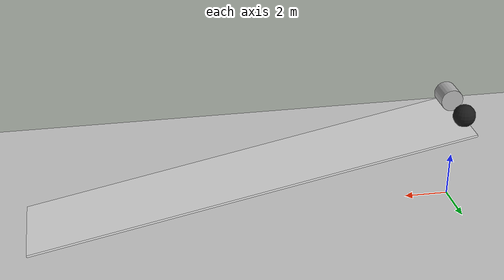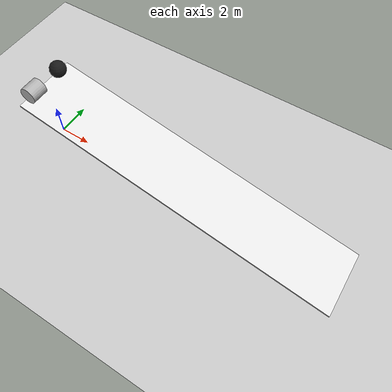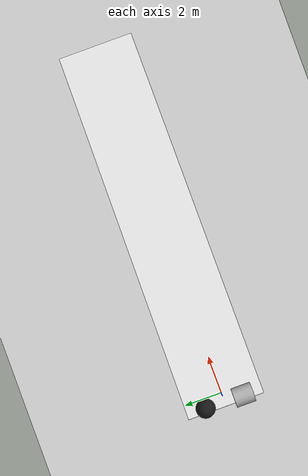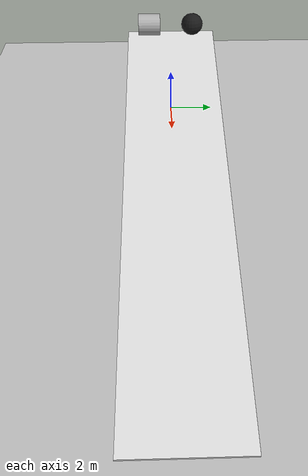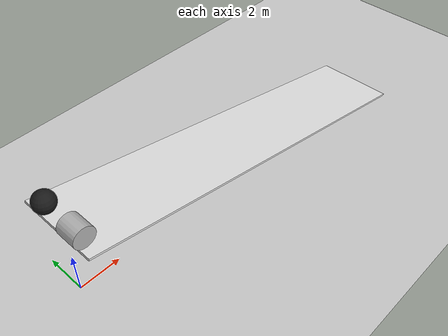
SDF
<?xml version="1.0" ?>
<sdf version='1.9'>
  <world name='falling_world'>
    <physics name='1ms' type='ignored'>
      <max_step_size>0.001</max_step_size>
      <real_time_factor>1</real_time_factor>
      <real_time_update_rate>1000</real_time_update_rate>
    </physics>
    <plugin name='gz::sim::systems::Physics' filename='ignition-gazebo-physics-system'/>
    <plugin name='gz::sim::systems::UserCommands' filename='ignition-gazebo-user-commands-system'/>
    <plugin name='gz::sim::systems::SceneBroadcaster' filename='ignition-gazebo-scene-broadcaster-system'/>
    <plugin name='gz::sim::systems::Contact' filename='ignition-gazebo-contact-system'/>
    <gravity>0 0 -9.8</gravity>
    <magnetic_field>6e-06 2.3e-05 -4.2e-05</magnetic_field>
    <atmosphere type='adiabatic'/>
    <scene>
      <ambient>0.4 0.4 0.4 1</ambient>
      <background>0.7 0.7 0.7 1</background>
      <shadows>true</shadows>
    </scene>
    <model name='ground_plane'>
      <static>true</static>
      <link name='link'>
        <collision name='collision'>
          <geometry>
            <plane>
              <normal>0 0 1</normal>
              <size>100 100</size>
            </plane>
          </geometry>
          <surface>
            <friction>
              <ode/>
            </friction>
            <bounce/>
            <contact/>
          </surface>
        </collision>
        <visual name='visual'>
          <geometry>
            <plane>
              <normal>0 0 1</normal>
              <size>100 100</size>
            </plane>
          </geometry>
          <material>
            <ambient>0.8 0.8 0.8 1</ambient>
            <diffuse>0.8 0.8 0.8 1</diffuse>
            <specular>0.8 0.8 0.8 1</specular>
          </material>
        </visual>
        <pose>0 0 0 0 -0 0</pose>
        <inertial>
          <pose>0 0 0 0 -0 0</pose>
          <mass>1</mass>
          <inertia>
            <ixx>1</ixx>
            <ixy>0</ixy>
            <ixz>0</ixz>
            <iyy>1</iyy>
            <iyz>0</iyz>
            <izz>1</izz>
          </inertia>
        </inertial>
        <enable_wind>false</enable_wind>
      </link>
      <pose>0 0 0 0 -0 0</pose>
      <self_collide>false</self_collide>
    </model>
    <model name='sphere'>
      <pose>0 1 4.5 0 0 0</pose>
      <link name='sphere_link'>
        <inertial>
          <inertia>
            <ixx>0.1</ixx>
            <ixy>0</ixy>
            <ixz>0</ixz>
            <iyy>0.1</iyy>
            <iyz>0</iyz>
            <izz>0.1</izz>
          </inertia>
          <mass>1</mass>
          <pose>0 0 0 0 -0 0</pose>
        </inertial>
        <collision name='sphere_collision'>
          <geometry>
            <sphere>
              <radius>0.5</radius>
            </sphere>
          </geometry>
          <surface>
            <friction>
              <ode/>
            </friction>
            <bounce/>
            <contact/>
          </surface>
        </collision>
        <visual name='sphere_visual'>
          <geometry>
            <sphere>
              <radius>0.5</radius>
            </sphere>
          </geometry>
          <material>
            <ambient>0.1 0.1 0.1 1</ambient>
            <diffuse>0.1 0.1 0.1 1</diffuse>
            <specular>1 1 1 1</specular>
          </material>
        </visual>
        <pose>0 0 0 0 -0 0</pose>
        <enable_wind>false</enable_wind>
      </link>
      <static>false</static>
      <self_collide>false</self_collide>
      <plugin name='gz::sim::systems::PosePublisher' filename='ignition-gazebo-pose-publisher-system'>
        <publish_link_pose>false</publish_link_pose>
        <publish_visual_pose>false</publish_visual_pose>
        <publish_collision_pose>false</publish_collision_pose>
        <publish_sensor_pose>false</publish_sensor_pose>
        <publish_nested_model_pose>true</publish_nested_model_pose>
        <publish_model_pose>true</publish_model_pose>
        <use_pose_vector_msg>true</use_pose_vector_msg>
        <update_frequency>100</update_frequency>
      </plugin>
    </model>
    <model name='cylinder'>
      <pose>0 -1 4.5 1.57079 -0 0</pose>
      <link name='cylinder_link'>
        <inertial>
          <inertia>
            <ixx>0.14580000000000001</ixx>
            <ixy>0</ixy>
            <ixz>0</ixz>
            <iyy>0.14580000000000001</iyy>
            <iyz>0</iyz>
            <izz>0.125</izz>
          </inertia>
          <mass>1</mass>
          <pose>0 0 0 0 -0 0</pose>
        </inertial>
        <collision name='cylinder_collision'>
          <geometry>
            <cylinder>
              <radius>0.5</radius>
              <length>1</length>
            </cylinder>
          </geometry>
          <surface>
            <friction>
              <ode/>
            </friction>
            <bounce/>
            <contact/>
          </surface>
        </collision>
        <visual name='cylinder_visual'>
          <geometry>
            <cylinder>
              <radius>0.5</radius>
              <length>1</length>
            </cylinder>
          </geometry>
          <material>
            <ambient>0.3 0.3 0.3 1</ambient>
            <diffuse>0.7 0.7 0.7 1</diffuse>
            <specular>1 1 1 1</specular>
          </material>
        </visual>
        <pose>0 0 0 0 -0 0</pose>
        <enable_wind>false</enable_wind>
      </link>
      <static>false</static>
      <self_collide>false</self_collide>
      <plugin name='gz::sim::systems::PosePublisher' filename='ignition-gazebo-pose-publisher-system'>
        <publish_link_pose>false</publish_link_pose>
        <publish_visual_pose>false</publish_visual_pose>
        <publish_collision_pose>false</publish_collision_pose>
        <publish_sensor_pose>false</publish_sensor_pose>
        <publish_nested_model_pose>true</publish_nested_model_pose>
        <publish_model_pose>true</publish_model_pose>
        <use_pose_vector_msg>true</use_pose_vector_msg>
        <update_frequency>100</update_frequency>
      </plugin>
    </model>
    <model name='inclined_plane'>
      <pose>9.5 0 2.0 0 0.2 0</pose>
      <link name='inclined_plane_link'>
        <inertial> <!-- wrong but does not matter here -->
          <inertia>
            <ixx>0.16666</ixx>
            <ixy>0</ixy>
            <ixz>0</ixz>
            <iyy>0.16666</iyy>
            <iyz>0</iyz>
            <izz>0.16666</izz>
          </inertia>
          <mass>1</mass>
          <pose>0 0 0 0 0 0</pose>
        </inertial>
        <collision name='inclined_plane_collision'>
          <geometry>
            <box>
              <size>20 4 0.1</size>
            </box>
          </geometry>
          <surface>
            <friction>
              <ode/>
            </friction>
            <bounce/>
            <contact/>
          </surface>
        </collision>
        <visual name='inclined_plane_visual'>
          <geometry>
            <box>
              <size>20 4 0.1</size>
            </box>
          </geometry>
          <material>
            <ambient>0.9 0.9 0.9 1</ambient>
            <diffuse>0.9 0.9 0.9 1</diffuse>
            <specular>1 1 1 1</specular>
          </material>
        </visual>
        <pose>0 0 0 0 -0 0</pose>
        <enable_wind>false</enable_wind>
      </link>
      <static>true</static>
      <self_collide>false</self_collide>
    </model>
    <light name='sun' type='directional'>
      <pose>0 0 10 0 -0 0</pose>
      <cast_shadows>true</cast_shadows>
      <intensity>1</intensity>
      <direction>-0.5 0.1 -0.9</direction>
      <diffuse>0.8 0.8 0.8 1</diffuse>
      <specular>0.2 0.2 0.2 1</specular>
      <attenuation>
        <range>1000</range>
        <linear>0.01</linear>
        <constant>0.90000000000000002</constant>
        <quadratic>0.001</quadratic>
      </attenuation>
      <spot>
        <inner_angle>0</inner_angle>
        <outer_angle>0</outer_angle>
        <falloff>0</falloff>
      </spot>
    </light>
  </world>
</sdf>
